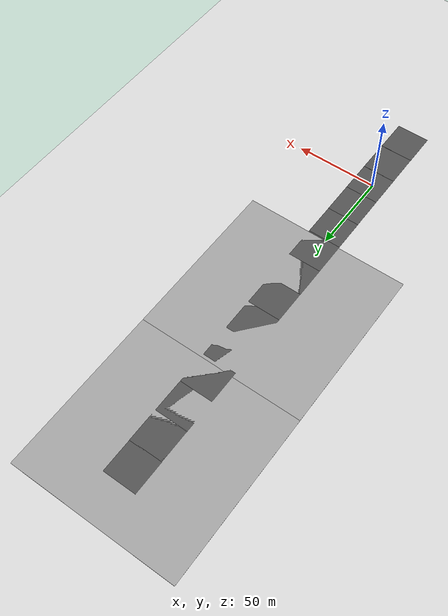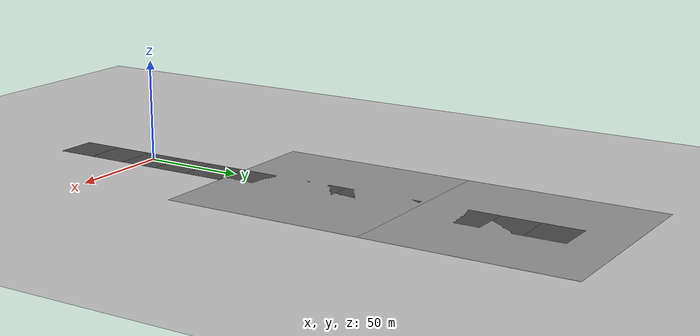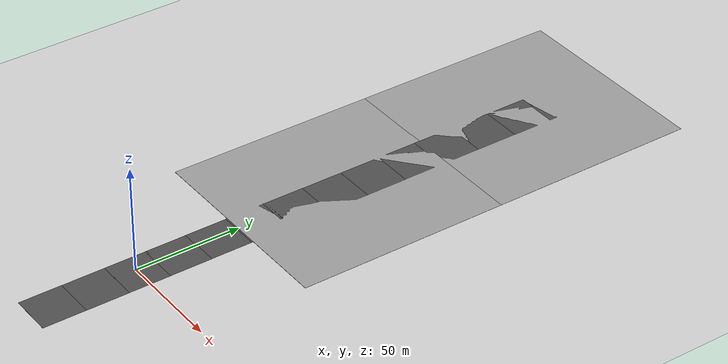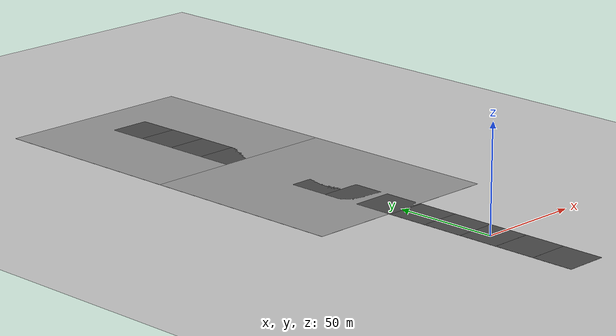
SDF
<sdf version="1.7">
 <world name="default">
  <model name="ground_plane">
   <static>1</static>
   <link name="link">
    <collision name="collision">
     <geometry><plane><normal>0 0 1</normal><size>100 100</size></plane></geometry>
     <surface><friction><ode><mu>100</mu><mu2>50</mu2></ode></friction></surface>
    </collision>
    <visual name="visual">
     <cast_shadows>0</cast_shadows>
     <geometry><plane><normal>0 0 1</normal><size>100 100</size></plane></geometry>
     <material>
      <script><uri>file://media/materials/scripts/gazebo.material</uri><name>Gazebo/Grey</name></script>
     </material>
    </visual>
   </link>
  </model>
  <gravity>0 0 -9.8</gravity>
  <magnetic_field>6e-06 2.3e-05 -4.2e-05</magnetic_field>
  <atmosphere type="adiabatic"/>
  <physics type="ode">
   <max_step_size>0.001</max_step_size>
   <real_time_factor>1</real_time_factor>
   <real_time_update_rate>1000</real_time_update_rate>
  </physics>
  <scene><ambient>0.6 0.6 0.6 1</ambient><background>0.7 0.7 0.7 1</background><shadows>0</shadows></scene>
  <audio><device>default</device></audio>
  <spherical_coordinates>
   <surface_model>EARTH_WGS84</surface_model>
   <latitude_deg>0</latitude_deg>
   <longitude_deg>0</longitude_deg>
   <elevation>0</elevation>
   <heading_deg>0</heading_deg>
  </spherical_coordinates>
  <model name="asphalt_plane">
   <static>1</static>
   <link name="link">
    <collision name="collision"><geometry><box><size>20 20 0.1</size></box></geometry></collision>
    <visual name="visual">
     <cast_shadows>0</cast_shadows>
     <geometry><box><size>20 20 0.1</size></box></geometry>
     <material>
      <script>
       <uri>model://asphalt_plane/materials/scripts</uri>
       <uri>model://asphalt_plane/materials/textures</uri>
       <name>vrc/asphalt</name>
      </script>
     </material>
    </visual>
   </link>
   <pose>1.58941 0.021594 0 0 -0 0</pose>
  </model>
  <model name="asphalt_plane_0">
   <static>1</static>
   <link name="link">
    <collision name="collision"><geometry><box><size>20 20 0.1</size></box></geometry></collision>
    <visual name="visual">
     <cast_shadows>0</cast_shadows>
     <geometry><box><size>20 20 0.1</size></box></geometry>
     <material>
      <script>
       <uri>model://asphalt_plane/materials/scripts</uri>
       <uri>model://asphalt_plane/materials/textures</uri>
       <name>vrc/asphalt</name>
      </script>
     </material>
    </visual>
   </link>
   <pose>1.62688 -19.9971 0 0 -0 0</pose>
  </model>
  <model name="asphalt_plane_0_clone">
   <static>1</static>
   <link name="link">
    <collision name="collision"><geometry><box><size>20 20 0.1</size></box></geometry></collision>
    <visual name="visual">
     <cast_shadows>0</cast_shadows>
     <geometry><box><size>20 20 0.1</size></box></geometry>
     <material>
      <script>
       <uri>model://asphalt_plane/materials/scripts</uri>
       <uri>model://asphalt_plane/materials/textures</uri>
       <name>vrc/asphalt</name>
      </script>
     </material>
    </visual>
   </link>
   <pose>1.53061 19.4604 0 0 -0 0</pose>
  </model>
  <model name="asphalt_plane_0_clone_0">
   <static>1</static>
   <link name="link">
    <collision name="collision"><geometry><box><size>20 20 0.1</size></box></geometry></collision>
    <visual name="visual">
     <cast_shadows>0</cast_shadows>
     <geometry><box><size>20 20 0.1</size></box></geometry>
     <material>
      <script>
       <uri>model://asphalt_plane/materials/scripts</uri>
       <uri>model://asphalt_plane/materials/textures</uri>
       <name>vrc/asphalt</name>
      </script>
     </material>
    </visual>
   </link>
   <pose>1.57472 -40.026 0 0 -0 0</pose>
  </model>
  <model name="asphalt_plane_0_clone_clone">
   <static>1</static>
   <link name="link">
    <collision name="collision"><geometry><box><size>20 20 0.1</size></box></geometry></collision>
    <visual name="visual">
     <cast_shadows>0</cast_shadows>
     <geometry><box><size>20 20 0.1</size></box></geometry>
     <material>
      <script>
       <uri>model://asphalt_plane/materials/scripts</uri>
       <uri>model://asphalt_plane/materials/textures</uri>
       <name>vrc/asphalt</name>
      </script>
     </material>
    </visual>
   </link>
   <pose>1.46519 39.017 0 0 -0 0</pose>
  </model>
  <model name="asphalt_plane_0_clone_clone_0">
   <static>1</static>
   <link name="link">
    <collision name="collision"><geometry><box><size>20 20 0.1</size></box></geometry></collision>
    <visual name="visual">
     <cast_shadows>0</cast_shadows>
     <geometry><box><size>20 20 0.1</size></box></geometry>
     <material>
      <script>
       <uri>model://asphalt_plane/materials/scripts</uri>
       <uri>model://asphalt_plane/materials/textures</uri>
       <name>vrc/asphalt</name>
      </script>
     </material>
    </visual>
   </link>
   <pose>1.42594 58.952 0 0 -0 0</pose>
  </model>
  <model name="asphalt_plane_0_clone_clone_1">
   <static>1</static>
   <link name="link">
    <collision name="collision"><geometry><box><size>20 20 0.1</size></box></geometry></collision>
    <visual name="visual">
     <cast_shadows>0</cast_shadows>
     <geometry><box><size>20 20 0.1</size></box></geometry>
     <material>
      <script>
       <uri>model://asphalt_plane/materials/scripts</uri>
       <uri>model://asphalt_plane/materials/textures</uri>
       <name>vrc/asphalt</name>
      </script>
     </material>
    </visual>
   </link>
   <pose>1.38812 77.809 0 0 -0 0</pose>
  </model>
  <model name="asphalt_plane_0_clone_clone_2">
   <static>1</static>
   <link name="link">
    <collision name="collision"><geometry><box><size>20 20 0.1</size></box></geometry></collision>
    <visual name="visual">
     <cast_shadows>0</cast_shadows>
     <geometry><box><size>20 20 0.1</size></box></geometry>
     <material>
      <script>
       <uri>model://asphalt_plane/materials/scripts</uri>
       <uri>model://asphalt_plane/materials/textures</uri>
       <name>vrc/asphalt</name>
      </script>
     </material>
    </visual>
   </link>
   <pose>1.47504 97.7512 0 0 -0 0</pose>
  </model>
  <model name="asphalt_plane_0_clone_clone_3">
   <static>1</static>
   <link name="link">
    <collision name="collision"><geometry><box><size>20 20 0.1</size></box></geometry></collision>
    <visual name="visual">
     <cast_shadows>0</cast_shadows>
     <geometry><box><size>20 20 0.1</size></box></geometry>
     <material>
      <script>
       <uri>model://asphalt_plane/materials/scripts</uri>
       <uri>model://asphalt_plane/materials/textures</uri>
       <name>vrc/asphalt</name>
      </script>
     </material>
    </visual>
   </link>
   <pose>1.49678 117.663 0 0 -0 0</pose>
  </model>
  <model name="asphalt_plane_0_clone_clone_4">
   <static>1</static>
   <link name="link">
    <collision name="collision"><geometry><box><size>20 20 0.1</size></box></geometry></collision>
    <visual name="visual">
     <cast_shadows>0</cast_shadows>
     <geometry><box><size>20 20 0.1</size></box></geometry>
     <material>
      <script>
       <uri>model://asphalt_plane/materials/scripts</uri>
       <uri>model://asphalt_plane/materials/textures</uri>
       <name>vrc/asphalt</name>
      </script>
     </material>
    </visual>
   </link>
   <pose>1.3713 137.619 0 0 -0 0</pose>
  </model>
  <model name="asphalt_plane_0_clone_clone_5">
   <static>1</static>
   <link name="link">
    <collision name="collision"><geometry><box><size>20 20 0.1</size></box></geometry></collision>
    <visual name="visual">
     <cast_shadows>0</cast_shadows>
     <geometry><box><size>20 20 0.1</size></box></geometry>
     <material>
      <script>
       <uri>model://asphalt_plane/materials/scripts</uri>
       <uri>model://asphalt_plane/materials/textures</uri>
       <name>vrc/asphalt</name>
      </script>
     </material>
    </visual>
   </link>
   <pose>1.33628 156.878 0 0 -0 0</pose>
  </model>
  <model name="asphalt_plane_0_clone_clone_7">
   <static>1</static>
   <link name="link">
    <collision name="collision"><geometry><box><size>20 20 0.1</size></box></geometry></collision>
    <visual name="visual">
     <cast_shadows>0</cast_shadows>
     <geometry><box><size>20 20 0.1</size></box></geometry>
     <material>
      <script>
       <uri>model://asphalt_plane/materials/scripts</uri>
       <uri>model://asphalt_plane/materials/textures</uri>
       <name>vrc/asphalt</name>
      </script>
     </material>
    </visual>
   </link>
   <pose>1.47113 197 0 0 -0 0</pose>
  </model>
  <model name="asphalt_plane_0_clone_clone_8">
   <static>1</static>
   <link name="link">
    <collision name="collision"><geometry><box><size>20 20 0.1</size></box></geometry></collision>
    <visual name="visual">
     <cast_shadows>0</cast_shadows>
     <geometry><box><size>20 20 0.1</size></box></geometry>
     <material>
      <script>
       <uri>model://asphalt_plane/materials/scripts</uri>
       <uri>model://asphalt_plane/materials/textures</uri>
       <name>vrc/asphalt</name>
      </script>
     </material>
    </visual>
   </link>
   <pose>1.38782 216.598 0 0 -0 0</pose>
  </model>
  <model name="ground_plane_0">
   <static>1</static>
   <link name="link">
    <collision name="collision">
     <geometry><plane><normal>0 0 1</normal><size>100 100</size></plane></geometry>
     <surface><friction><ode><mu>100</mu><mu2>50</mu2></ode></friction></surface>
    </collision>
    <visual name="visual">
     <cast_shadows>0</cast_shadows>
     <geometry><plane><normal>0 0 1</normal><size>100 100</size></plane></geometry>
     <material>
      <script><uri>file://media/materials/scripts/gazebo.material</uri><name>Gazebo/Grey</name></script>
     </material>
    </visual>
   </link>
   <pose>-0.053214 99.7343 0 0 -0 0</pose>
  </model>
  <model name="ground_plane_1">
   <static>1</static>
   <link name="link">
    <collision name="collision">
     <geometry><plane><normal>0 0 1</normal><size>100 100</size></plane></geometry>
     <surface><friction><ode><mu>100</mu><mu2>50</mu2></ode></friction></surface>
    </collision>
    <visual name="visual">
     <cast_shadows>0</cast_shadows>
     <geometry><plane><normal>0 0 1</normal><size>100 100</size></plane></geometry>
     <material>
      <script><uri>file://media/materials/scripts/gazebo.material</uri><name>Gazebo/Grey</name></script>
     </material>
    </visual>
   </link>
   <pose>-0.062627 199.482 0 0 -0 0</pose>
  </model>
  <model name="asphalt_plane_0_clone_clone_7_clone">
   <static>1</static>
   <link name="link">
    <collision name="collision"><geometry><box><size>20 20 0.1</size></box></geometry></collision>
    <visual name="visual">
     <cast_shadows>0</cast_shadows>
     <geometry><box><size>20 20 0.1</size></box></geometry>
     <material>
      <script>
       <uri>model://asphalt_plane/materials/scripts</uri>
       <uri>model://asphalt_plane/materials/textures</uri>
       <name>vrc/asphalt</name>
      </script>
     </material>
    </visual>
   </link>
   <pose>1.3825 176.849 0 0 -0 0</pose>
  </model>
 </world>
</sdf>
